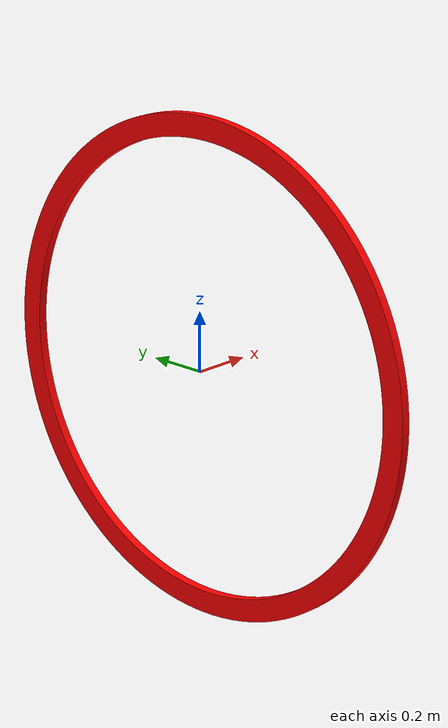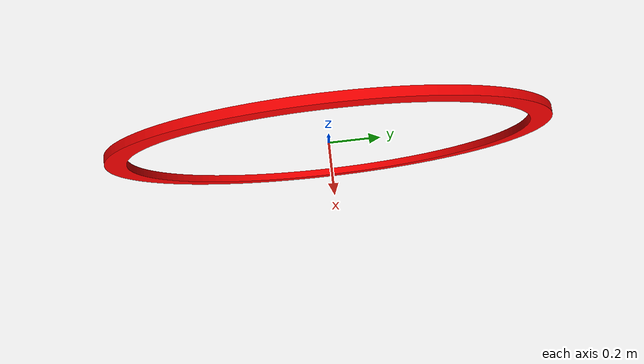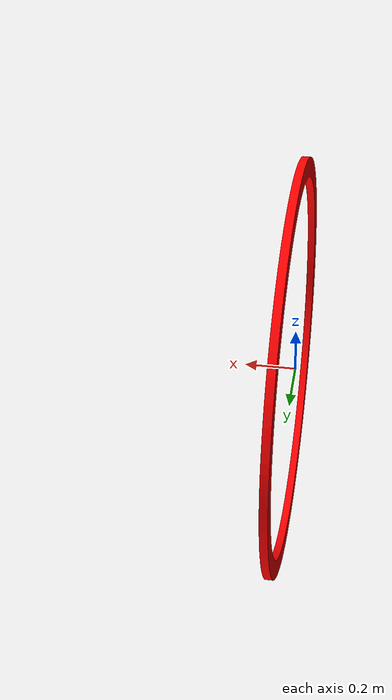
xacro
<?xml version="1.0" encoding="utf-8"?>

<robot xmlns:xacro="http://www.ros.org/wiki/xacro" name="hoop">
    <link name="base_link">
        <inertial>
            <origin xyz="0.0 0.0 0.0" rpy="0.0 0.0 0.0"/>
            <mass value="0.0"/>
            <inertia ixx="0.0" ixy="0.0" ixz="0.0" iyy="0.0" iyz="0.0" izz="0.0"/>
        </inertial>
        <visual name='v1'>
            <origin rpy="0 0 0" xyz="0 0 0"/>
            <geometry>
                <mesh filename="$(find quadrotor_simulation)/meshes/hoop.dae" scale="1.5 1.5 1.5"/>
            </geometry>
            <material name="blue">
                <color rgba="1.0 .0 .0 1"/>
            </material>
        </visual>
    </link>
</robot>
